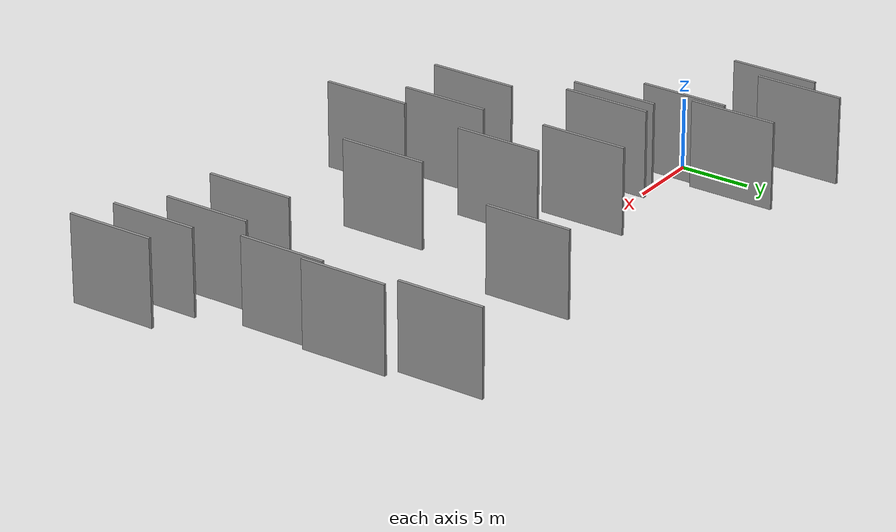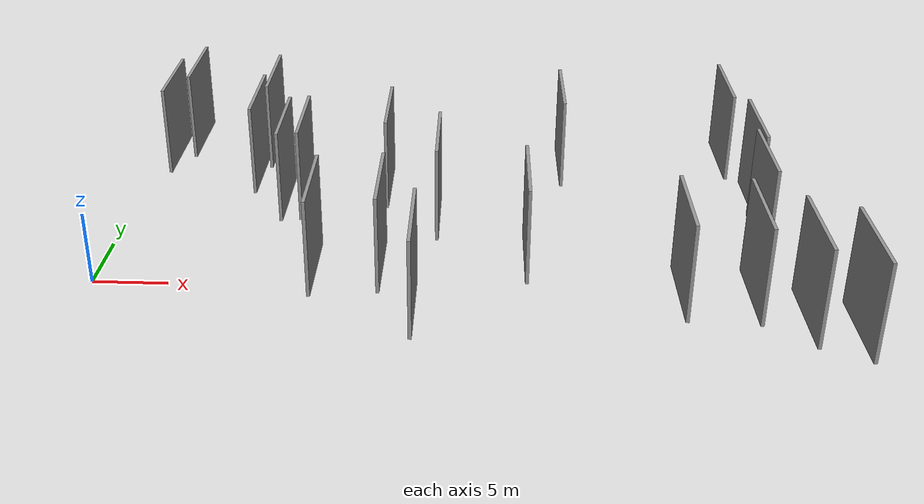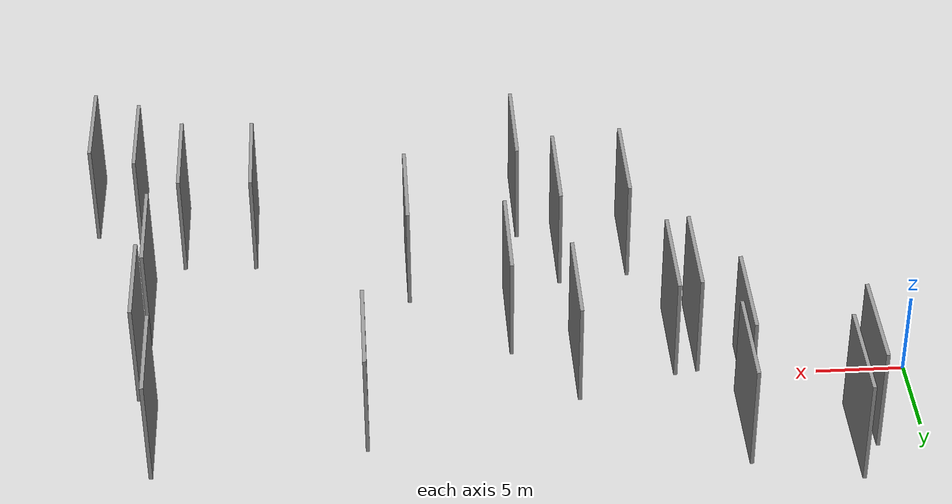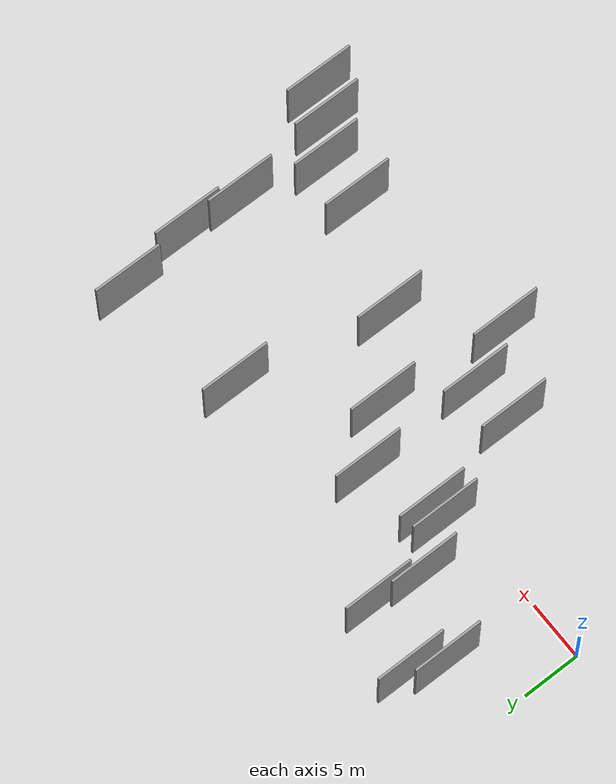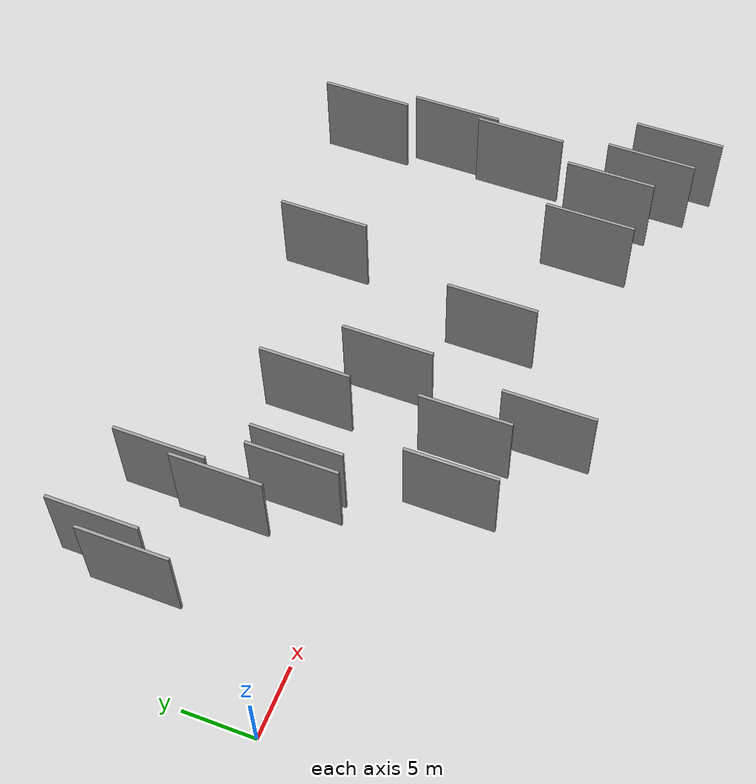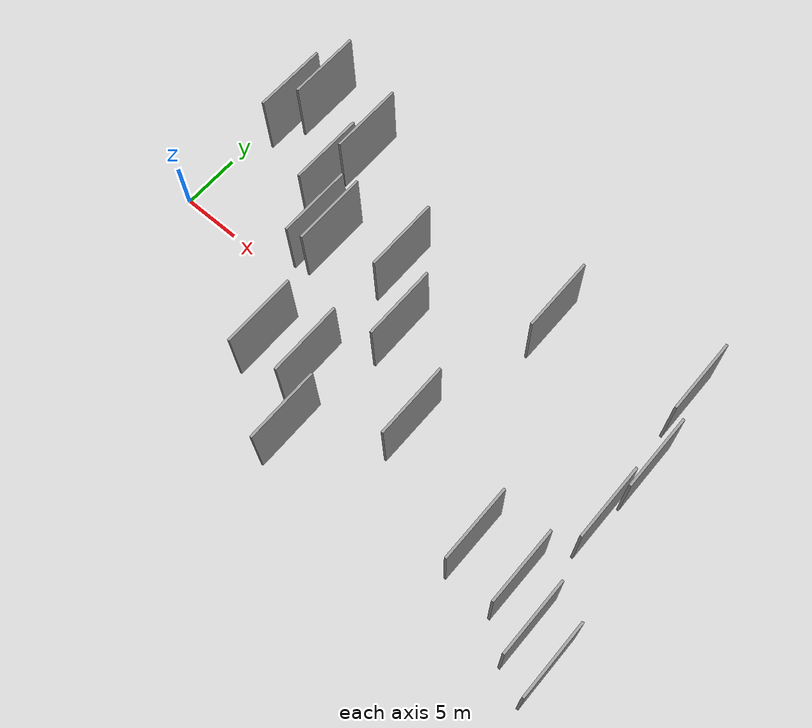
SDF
<sdf version="1.6">
 <world name="default">
  <scene>
   <sky><clouds><speed>12</speed></clouds></sky>
   <ambient>0.4 0.4 0.4 1</ambient>
   <background>0.7 0.7 0.7 1</background>
   <shadows>1</shadows>
  </scene>
  <gravity>0 0 -9.8066</gravity>
  <magnetic_field>6e-06 2.3e-05 -4.2e-05</magnetic_field>
  <physics default="0" name="default_physics" type="ode">
   <ode>
    <solver>
     <type>quick</type>
     <iters>10</iters>
     <sor>1.0</sor>
     <use_dynamic_moi_rescaling>0</use_dynamic_moi_rescaling>
    </solver>
    <constraints>
     <cfm>0</cfm>
     <erp>0.2</erp>
     <contact_max_correcting_vel>100</contact_max_correcting_vel>
     <contact_surface_layer>0.001</contact_surface_layer>
    </constraints>
   </ode>
   <max_step_size>0.004</max_step_size>
   <real_time_factor>1</real_time_factor>
   <real_time_update_rate>250</real_time_update_rate>
  </physics>
  <light name="sun" type="directional">
   <pose>0 0 10 0 0 0</pose>
   <diffuse>0.8 0.8 0.8 1</diffuse>
   <specular>0.2 0.2 0.2 1</specular>
   <attenuation>
    <range>1000</range>
    <constant>0.9</constant>
    <linear>0.01</linear>
    <quadratic>0.001</quadratic>
   </attenuation>
   <direction>-0.5 0.1 -0.9</direction>
  </light>
  <model name="grey_wall_1">
   <static>1</static>
   <pose>14.0424 2.8479 5.0 0.000000 0.000000 1.570796</pose>
   <link name="link">
    <pose>0 0 3.00 0 0 0</pose>
    <collision name="collision"><geometry><box><size>6.00 0.2 6.00</size></box></geometry></collision>
    <visual name="visual">
     <cast_shadows>0</cast_shadows>
     <geometry><box><size>6.00 0.2 6.00</size></box></geometry>
     <material>
      <script>
       <uri>model://grey_wall/materials/scripts</uri>
       <uri>model://grey_wall/materials/textures</uri>
       <name>vrc/grey_wall</name>
      </script>
     </material>
    </visual>
   </link>
  </model>
  <model name="grey_wall_2">
   <static>1</static>
   <pose>45.8288 -11.6753 5.0 0.000000 0.000000 1.570796</pose>
   <link name="link">
    <pose>0 0 3.00 0 0 0</pose>
    <collision name="collision"><geometry><box><size>6.00 0.2 6.00</size></box></geometry></collision>
    <visual name="visual">
     <cast_shadows>0</cast_shadows>
     <geometry><box><size>6.00 0.2 6.00</size></box></geometry>
     <material>
      <script>
       <uri>model://grey_wall/materials/scripts</uri>
       <uri>model://grey_wall/materials/textures</uri>
       <name>vrc/grey_wall</name>
      </script>
     </material>
    </visual>
   </link>
  </model>
  <model name="grey_wall_3">
   <static>1</static>
   <pose>22.7268 0.5014 5.0 0.000000 0.000000 1.570796</pose>
   <link name="link">
    <pose>0 0 3.00 0 0 0</pose>
    <collision name="collision"><geometry><box><size>6.00 0.2 6.00</size></box></geometry></collision>
    <visual name="visual">
     <cast_shadows>0</cast_shadows>
     <geometry><box><size>6.00 0.2 6.00</size></box></geometry>
     <material>
      <script>
       <uri>model://grey_wall/materials/scripts</uri>
       <uri>model://grey_wall/materials/textures</uri>
       <name>vrc/grey_wall</name>
      </script>
     </material>
    </visual>
   </link>
  </model>
  <model name="grey_wall_4">
   <static>1</static>
   <pose>40.7246 -8.3697 5.0 0.000000 0.000000 1.570796</pose>
   <link name="link">
    <pose>0 0 3.00 0 0 0</pose>
    <collision name="collision"><geometry><box><size>6.00 0.2 6.00</size></box></geometry></collision>
    <visual name="visual">
     <cast_shadows>0</cast_shadows>
     <geometry><box><size>6.00 0.2 6.00</size></box></geometry>
     <material>
      <script>
       <uri>model://grey_wall/materials/scripts</uri>
       <uri>model://grey_wall/materials/textures</uri>
       <name>vrc/grey_wall</name>
      </script>
     </material>
    </visual>
   </link>
  </model>
  <model name="grey_wall_5">
   <static>1</static>
   <pose>10.9628 10.3165 5.0 0.000000 0.000000 1.570796</pose>
   <link name="link">
    <pose>0 0 3.00 0 0 0</pose>
    <collision name="collision"><geometry><box><size>6.00 0.2 6.00</size></box></geometry></collision>
    <visual name="visual">
     <cast_shadows>0</cast_shadows>
     <geometry><box><size>6.00 0.2 6.00</size></box></geometry>
     <material>
      <script>
       <uri>model://grey_wall/materials/scripts</uri>
       <uri>model://grey_wall/materials/textures</uri>
       <name>vrc/grey_wall</name>
      </script>
     </material>
    </visual>
   </link>
  </model>
  <model name="grey_wall_6">
   <static>1</static>
   <pose>36.7189 -8.1690 5.0 0.000000 0.000000 1.570796</pose>
   <link name="link">
    <pose>0 0 3.00 0 0 0</pose>
    <collision name="collision"><geometry><box><size>6.00 0.2 6.00</size></box></geometry></collision>
    <visual name="visual">
     <cast_shadows>0</cast_shadows>
     <geometry><box><size>6.00 0.2 6.00</size></box></geometry>
     <material>
      <script>
       <uri>model://grey_wall/materials/scripts</uri>
       <uri>model://grey_wall/materials/textures</uri>
       <name>vrc/grey_wall</name>
      </script>
     </material>
    </visual>
   </link>
  </model>
  <model name="grey_wall_7">
   <static>1</static>
   <pose>43.2795 -10.4306 5.0 0.000000 0.000000 1.570796</pose>
   <link name="link">
    <pose>0 0 3.00 0 0 0</pose>
    <collision name="collision"><geometry><box><size>6.00 0.2 6.00</size></box></geometry></collision>
    <visual name="visual">
     <cast_shadows>0</cast_shadows>
     <geometry><box><size>6.00 0.2 6.00</size></box></geometry>
     <material>
      <script>
       <uri>model://grey_wall/materials/scripts</uri>
       <uri>model://grey_wall/materials/textures</uri>
       <name>vrc/grey_wall</name>
      </script>
     </material>
    </visual>
   </link>
  </model>
  <model name="grey_wall_8">
   <static>1</static>
   <pose>19.3622 4.6089 5.0 0.000000 0.000000 1.570796</pose>
   <link name="link">
    <pose>0 0 3.00 0 0 0</pose>
    <collision name="collision"><geometry><box><size>6.00 0.2 6.00</size></box></geometry></collision>
    <visual name="visual">
     <cast_shadows>0</cast_shadows>
     <geometry><box><size>6.00 0.2 6.00</size></box></geometry>
     <material>
      <script>
       <uri>model://grey_wall/materials/scripts</uri>
       <uri>model://grey_wall/materials/textures</uri>
       <name>vrc/grey_wall</name>
      </script>
     </material>
    </visual>
   </link>
  </model>
  <model name="grey_wall_9">
   <static>1</static>
   <pose>4.1986 9.2965 5.0 0.000000 0.000000 1.570796</pose>
   <link name="link">
    <pose>0 0 3.00 0 0 0</pose>
    <collision name="collision"><geometry><box><size>6.00 0.2 6.00</size></box></geometry></collision>
    <visual name="visual">
     <cast_shadows>0</cast_shadows>
     <geometry><box><size>6.00 0.2 6.00</size></box></geometry>
     <material>
      <script>
       <uri>model://grey_wall/materials/scripts</uri>
       <uri>model://grey_wall/materials/textures</uri>
       <name>vrc/grey_wall</name>
      </script>
     </material>
    </visual>
   </link>
  </model>
  <model name="grey_wall_10">
   <static>1</static>
   <pose>42.4123 -1.4762 5.0 0.000000 0.000000 1.570796</pose>
   <link name="link">
    <pose>0 0 3.00 0 0 0</pose>
    <collision name="collision"><geometry><box><size>6.00 0.2 6.00</size></box></geometry></collision>
    <visual name="visual">
     <cast_shadows>0</cast_shadows>
     <geometry><box><size>6.00 0.2 6.00</size></box></geometry>
     <material>
      <script>
       <uri>model://grey_wall/materials/scripts</uri>
       <uri>model://grey_wall/materials/textures</uri>
       <name>vrc/grey_wall</name>
      </script>
     </material>
    </visual>
   </link>
  </model>
  <model name="grey_wall_11">
   <static>1</static>
   <pose>12.8124 2.6195 5.0 0.000000 0.000000 1.570796</pose>
   <link name="link">
    <pose>0 0 3.00 0 0 0</pose>
    <collision name="collision"><geometry><box><size>6.00 0.2 6.00</size></box></geometry></collision>
    <visual name="visual">
     <cast_shadows>0</cast_shadows>
     <geometry><box><size>6.00 0.2 6.00</size></box></geometry>
     <material>
      <script>
       <uri>model://grey_wall/materials/scripts</uri>
       <uri>model://grey_wall/materials/textures</uri>
       <name>vrc/grey_wall</name>
      </script>
     </material>
    </visual>
   </link>
  </model>
  <model name="grey_wall_12">
   <static>1</static>
   <pose>42.7904 3.2546 5.0 0.000000 0.000000 1.570796</pose>
   <link name="link">
    <pose>0 0 3.00 0 0 0</pose>
    <collision name="collision"><geometry><box><size>6.00 0.2 6.00</size></box></geometry></collision>
    <visual name="visual">
     <cast_shadows>0</cast_shadows>
     <geometry><box><size>6.00 0.2 6.00</size></box></geometry>
     <material>
      <script>
       <uri>model://grey_wall/materials/scripts</uri>
       <uri>model://grey_wall/materials/textures</uri>
       <name>vrc/grey_wall</name>
      </script>
     </material>
    </visual>
   </link>
  </model>
  <model name="grey_wall_13">
   <static>1</static>
   <pose>5.3571 11.8123 5.0 0.000000 0.000000 1.570796</pose>
   <link name="link">
    <pose>0 0 3.00 0 0 0</pose>
    <collision name="collision"><geometry><box><size>6.00 0.2 6.00</size></box></geometry></collision>
    <visual name="visual">
     <cast_shadows>0</cast_shadows>
     <geometry><box><size>6.00 0.2 6.00</size></box></geometry>
     <material>
      <script>
       <uri>model://grey_wall/materials/scripts</uri>
       <uri>model://grey_wall/materials/textures</uri>
       <name>vrc/grey_wall</name>
      </script>
     </material>
    </visual>
   </link>
  </model>
  <model name="grey_wall_14">
   <static>1</static>
   <pose>15.7115 -6.2378 5.0 0.000000 0.000000 1.570796</pose>
   <link name="link">
    <pose>0 0 3.00 0 0 0</pose>
    <collision name="collision"><geometry><box><size>6.00 0.2 6.00</size></box></geometry></collision>
    <visual name="visual">
     <cast_shadows>0</cast_shadows>
     <geometry><box><size>6.00 0.2 6.00</size></box></geometry>
     <material>
      <script>
       <uri>model://grey_wall/materials/scripts</uri>
       <uri>model://grey_wall/materials/textures</uri>
       <name>vrc/grey_wall</name>
      </script>
     </material>
    </visual>
   </link>
  </model>
  <model name="grey_wall_15">
   <static>1</static>
   <pose>19.5924 -5.7333 5.0 0.000000 0.000000 1.570796</pose>
   <link name="link">
    <pose>0 0 3.00 0 0 0</pose>
    <collision name="collision"><geometry><box><size>6.00 0.2 6.00</size></box></geometry></collision>
    <visual name="visual">
     <cast_shadows>0</cast_shadows>
     <geometry><box><size>6.00 0.2 6.00</size></box></geometry>
     <material>
      <script>
       <uri>model://grey_wall/materials/scripts</uri>
       <uri>model://grey_wall/materials/textures</uri>
       <name>vrc/grey_wall</name>
      </script>
     </material>
    </visual>
   </link>
  </model>
  <model name="grey_wall_16">
   <static>1</static>
   <pose>10.4952 6.4349 5.0 0.000000 0.000000 1.570796</pose>
   <link name="link">
    <pose>0 0 3.00 0 0 0</pose>
    <collision name="collision"><geometry><box><size>6.00 0.2 6.00</size></box></geometry></collision>
    <visual name="visual">
     <cast_shadows>0</cast_shadows>
     <geometry><box><size>6.00 0.2 6.00</size></box></geometry>
     <material>
      <script>
       <uri>model://grey_wall/materials/scripts</uri>
       <uri>model://grey_wall/materials/textures</uri>
       <name>vrc/grey_wall</name>
      </script>
     </material>
    </visual>
   </link>
  </model>
  <model name="grey_wall_17">
   <static>1</static>
   <pose>28.0987 -4.4418 5.0 0.000000 0.000000 1.570796</pose>
   <link name="link">
    <pose>0 0 3.00 0 0 0</pose>
    <collision name="collision"><geometry><box><size>6.00 0.2 6.00</size></box></geometry></collision>
    <visual name="visual">
     <cast_shadows>0</cast_shadows>
     <geometry><box><size>6.00 0.2 6.00</size></box></geometry>
     <material>
      <script>
       <uri>model://grey_wall/materials/scripts</uri>
       <uri>model://grey_wall/materials/textures</uri>
       <name>vrc/grey_wall</name>
      </script>
     </material>
    </visual>
   </link>
  </model>
  <model name="grey_wall_18">
   <static>1</static>
   <pose>41.8855 9.5534 5.0 0.000000 0.000000 1.570796</pose>
   <link name="link">
    <pose>0 0 3.00 0 0 0</pose>
    <collision name="collision"><geometry><box><size>6.00 0.2 6.00</size></box></geometry></collision>
    <visual name="visual">
     <cast_shadows>0</cast_shadows>
     <geometry><box><size>6.00 0.2 6.00</size></box></geometry>
     <material>
      <script>
       <uri>model://grey_wall/materials/scripts</uri>
       <uri>model://grey_wall/materials/textures</uri>
       <name>vrc/grey_wall</name>
      </script>
     </material>
    </visual>
   </link>
  </model>
  <model name="grey_wall_19">
   <static>1</static>
   <pose>21.6958 -10.3048 5.0 0.000000 0.000000 1.570796</pose>
   <link name="link">
    <pose>0 0 3.00 0 0 0</pose>
    <collision name="collision"><geometry><box><size>6.00 0.2 6.00</size></box></geometry></collision>
    <visual name="visual">
     <cast_shadows>0</cast_shadows>
     <geometry><box><size>6.00 0.2 6.00</size></box></geometry>
     <material>
      <script>
       <uri>model://grey_wall/materials/scripts</uri>
       <uri>model://grey_wall/materials/textures</uri>
       <name>vrc/grey_wall</name>
      </script>
     </material>
    </visual>
   </link>
  </model>
  <model name="grey_wall_20">
   <static>1</static>
   <pose>30.7339 8.1198 5.0 0.000000 0.000000 1.570796</pose>
   <link name="link">
    <pose>0 0 3.00 0 0 0</pose>
    <collision name="collision"><geometry><box><size>6.00 0.2 6.00</size></box></geometry></collision>
    <visual name="visual">
     <cast_shadows>0</cast_shadows>
     <geometry><box><size>6.00 0.2 6.00</size></box></geometry>
     <material>
      <script>
       <uri>model://grey_wall/materials/scripts</uri>
       <uri>model://grey_wall/materials/textures</uri>
       <name>vrc/grey_wall</name>
      </script>
     </material>
    </visual>
   </link>
  </model>
 </world>
</sdf>
